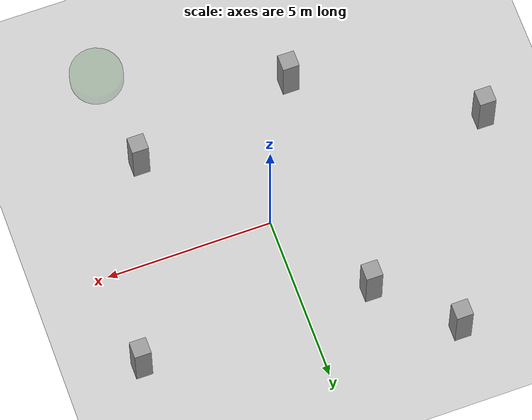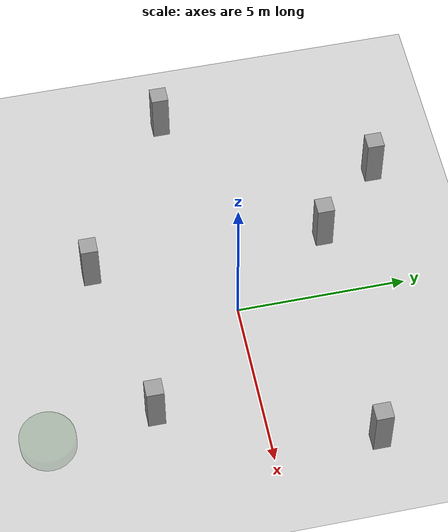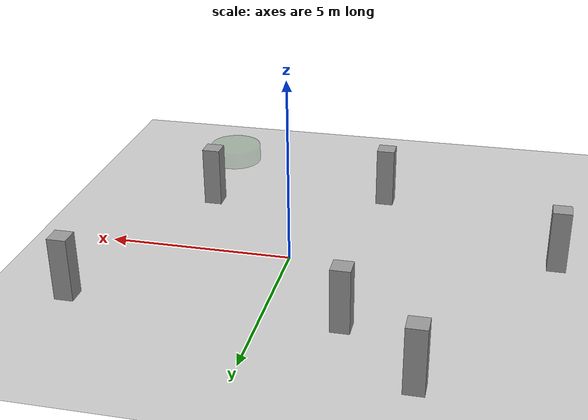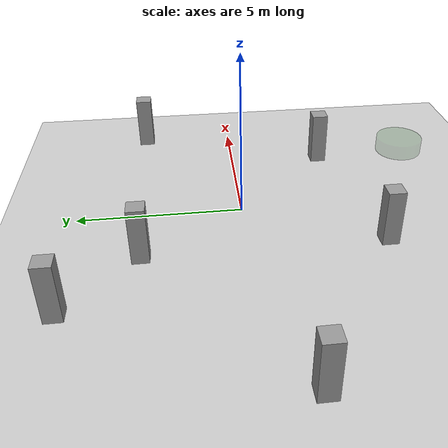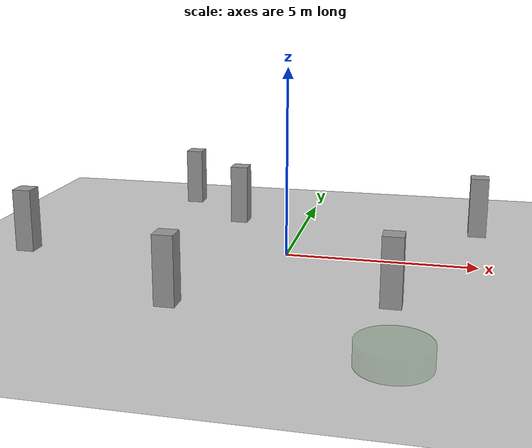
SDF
<sdf version="1.6">
 <world name="default">
  <light name="sun" type="directional">
   <pose>0 0 10 0 -0 0</pose>
   <diffuse>0.8 0.8 0.8 1</diffuse>
   <specular>0.1 0.1 0.1 1</specular>
   <attenuation>
    <range>1000</range>
    <constant>0.9</constant>
    <linear>0.01</linear>
    <quadratic>0.001</quadratic>
   </attenuation>
   <direction>-0.5 0.5 -1</direction>
  </light>
  <model name="ground_plane">
   <static>1</static>
   <link name="link">
    <collision name="collision">
     <geometry><plane><normal>0 0 1</normal><size>100 100</size></plane></geometry>
     <surface><friction><ode><mu>100</mu><mu2>50</mu2></ode></friction></surface>
    </collision>
    <visual name="visual">
     <cast_shadows>0</cast_shadows>
     <geometry><plane><normal>0 0 1</normal><size>100 100</size></plane></geometry>
     <material>
      <script><uri>file://media/materials/scripts/gazebo.material</uri><name>Gazebo/Grey</name></script>
     </material>
    </visual>
   </link>
  </model>
  <gravity>0 0 -9.8</gravity>
  <magnetic_field>6e-06 2.3e-05 -4.2e-05</magnetic_field>
  <atmosphere type="adiabatic"/>
  <physics name="default_physics" default="0" type="ode">
   <max_step_size>0.001</max_step_size>
   <real_time_factor>1</real_time_factor>
   <real_time_update_rate>1000</real_time_update_rate>
  </physics>
  <scene><ambient>0.4 0.4 0.4 1</ambient><background>0.7 0.7 0.7 1</background><shadows>1</shadows></scene>
  <spherical_coordinates>
   <surface_model>EARTH_WGS84</surface_model>
   <latitude_deg>0</latitude_deg>
   <longitude_deg>0</longitude_deg>
   <elevation>0</elevation>
   <heading_deg>0</heading_deg>
  </spherical_coordinates>
  <model name="obs_multi_0">
   <link name="link_3">
    <pose>0 0 0.85 0 -0 0</pose>
    <inertial>
     <mass>1</mass>
     <inertia>
      <ixx>0.166667</ixx>
      <ixy>0</ixy>
      <ixz>0</ixz>
      <iyy>0.166667</iyy>
      <iyz>0</iyz>
      <izz>0.166667</izz>
     </inertia>
    </inertial>
    <visual name="visual">
     <geometry><box><size>0.5 0.5 1.7</size></box></geometry>
     <material>
      <lighting>1</lighting>
      <script><uri>file://media/materials/scripts/gazebo.material</uri><name>Gazebo/Grey</name></script>
      <ambient>0.3 0.3 0.3 1</ambient>
      <diffuse>0.7 0.7 0.7 1</diffuse>
      <specular>0.01 0.01 0.01 1</specular>
      <emissive>0 0 0 1</emissive>
      <shader type="vertex"><normal_map>__default__</normal_map></shader>
     </material>
    </visual>
    <collision name="collision">
     <geometry><box><size>0.5 0.5 1.7</size></box></geometry>
     <surface>
      <friction>
       <ode><mu>1</mu><mu2>1</mu2><fdir1>0 0 0</fdir1><slip1>0</slip1><slip2>0</slip2></ode>
       <torsional>
        <coefficient>1</coefficient>
        <patch_radius>0</patch_radius>
        <surface_radius>0</surface_radius>
        <use_patch_radius>1</use_patch_radius>
        <ode><slip>0</slip></ode>
       </torsional>
      </friction>
      <bounce><restitution_coefficient>0</restitution_coefficient><threshold>1e+06</threshold></bounce>
      <contact>
       <collide_without_contact>0</collide_without_contact>
       <collide_without_contact_bitmask>1</collide_without_contact_bitmask>
       <collide_bitmask>1</collide_bitmask>
       <ode>
        <soft_cfm>0</soft_cfm>
        <soft_erp>0.2</soft_erp>
        <kp>1e+13</kp>
        <kd>1</kd>
        <max_vel>0.01</max_vel>
        <min_depth>0</min_depth>
       </ode>
       <bullet>
        <split_impulse>1</split_impulse>
        <split_impulse_penetration_threshold>-0.01</split_impulse_penetration_threshold>
        <soft_cfm>0</soft_cfm>
        <soft_erp>0.2</soft_erp>
        <kp>1e+13</kp>
        <kd>1</kd>
       </bullet>
      </contact>
     </surface>
    </collision>
   </link>
   <static>1</static>
   <pose>5 3 0 0 -0 0</pose>
  </model>
  <model name="obs_multi_1">
   <link name="link_3">
    <pose>0 0 0.85 0 -0 0</pose>
    <inertial>
     <mass>1</mass>
     <inertia>
      <ixx>0.166667</ixx>
      <ixy>0</ixy>
      <ixz>0</ixz>
      <iyy>0.166667</iyy>
      <iyz>0</iyz>
      <izz>0.166667</izz>
     </inertia>
    </inertial>
    <visual name="visual">
     <geometry><box><size>0.5 0.5 1.7</size></box></geometry>
     <material>
      <lighting>1</lighting>
      <script><uri>file://media/materials/scripts/gazebo.material</uri><name>Gazebo/Grey</name></script>
      <ambient>0.3 0.3 0.3 1</ambient>
      <diffuse>0.7 0.7 0.7 1</diffuse>
      <specular>0.01 0.01 0.01 1</specular>
      <emissive>0 0 0 1</emissive>
      <shader type="vertex"><normal_map>__default__</normal_map></shader>
     </material>
    </visual>
    <collision name="collision">
     <geometry><box><size>0.5 0.5 1.7</size></box></geometry>
     <surface>
      <friction>
       <ode><mu>1</mu><mu2>1</mu2><fdir1>0 0 0</fdir1><slip1>0</slip1><slip2>0</slip2></ode>
       <torsional>
        <coefficient>1</coefficient>
        <patch_radius>0</patch_radius>
        <surface_radius>0</surface_radius>
        <use_patch_radius>1</use_patch_radius>
        <ode><slip>0</slip></ode>
       </torsional>
      </friction>
      <bounce><restitution_coefficient>0</restitution_coefficient><threshold>1e+06</threshold></bounce>
      <contact>
       <collide_without_contact>0</collide_without_contact>
       <collide_without_contact_bitmask>1</collide_without_contact_bitmask>
       <collide_bitmask>1</collide_bitmask>
       <ode>
        <soft_cfm>0</soft_cfm>
        <soft_erp>0.2</soft_erp>
        <kp>1e+13</kp>
        <kd>1</kd>
        <max_vel>0.01</max_vel>
        <min_depth>0</min_depth>
       </ode>
       <bullet>
        <split_impulse>1</split_impulse>
        <split_impulse_penetration_threshold>-0.01</split_impulse_penetration_threshold>
        <soft_cfm>0</soft_cfm>
        <soft_erp>0.2</soft_erp>
        <kp>1e+13</kp>
        <kd>1</kd>
       </bullet>
      </contact>
     </surface>
    </collision>
   </link>
   <static>1</static>
   <pose>-2 -4 0 0 -0 0</pose>
  </model>
  <model name="obs_multi_2">
   <link name="link_3">
    <pose>0 0 0.85 0 -0 0</pose>
    <inertial>
     <mass>1</mass>
     <inertia>
      <ixx>0.166667</ixx>
      <ixy>0</ixy>
      <ixz>0</ixz>
      <iyy>0.166667</iyy>
      <iyz>0</iyz>
      <izz>0.166667</izz>
     </inertia>
    </inertial>
    <visual name="visual">
     <geometry><box><size>0.5 0.5 1.7</size></box></geometry>
     <material>
      <lighting>1</lighting>
      <script><uri>file://media/materials/scripts/gazebo.material</uri><name>Gazebo/Grey</name></script>
      <ambient>0.3 0.3 0.3 1</ambient>
      <diffuse>0.7 0.7 0.7 1</diffuse>
      <specular>0.01 0.01 0.01 1</specular>
      <emissive>0 0 0 1</emissive>
      <shader type="vertex"><normal_map>__default__</normal_map></shader>
     </material>
    </visual>
    <collision name="collision">
     <geometry><box><size>0.5 0.5 1.7</size></box></geometry>
     <surface>
      <friction>
       <ode><mu>1</mu><mu2>1</mu2><fdir1>0 0 0</fdir1><slip1>0</slip1><slip2>0</slip2></ode>
       <torsional>
        <coefficient>1</coefficient>
        <patch_radius>0</patch_radius>
        <surface_radius>0</surface_radius>
        <use_patch_radius>1</use_patch_radius>
        <ode><slip>0</slip></ode>
       </torsional>
      </friction>
      <bounce><restitution_coefficient>0</restitution_coefficient><threshold>1e+06</threshold></bounce>
      <contact>
       <collide_without_contact>0</collide_without_contact>
       <collide_without_contact_bitmask>1</collide_without_contact_bitmask>
       <collide_bitmask>1</collide_bitmask>
       <ode>
        <soft_cfm>0</soft_cfm>
        <soft_erp>0.2</soft_erp>
        <kp>1e+13</kp>
        <kd>1</kd>
        <max_vel>0.01</max_vel>
        <min_depth>0</min_depth>
       </ode>
       <bullet>
        <split_impulse>1</split_impulse>
        <split_impulse_penetration_threshold>-0.01</split_impulse_penetration_threshold>
        <soft_cfm>0</soft_cfm>
        <soft_erp>0.2</soft_erp>
        <kp>1e+13</kp>
        <kd>1</kd>
       </bullet>
      </contact>
     </surface>
    </collision>
   </link>
   <static>1</static>
   <pose>-4 5 0 0 -0 0</pose>
  </model>
  <model name="obs_multi_3">
   <link name="link_3">
    <pose>0 0 0.85 0 -0 0</pose>
    <inertial>
     <mass>1</mass>
     <inertia>
      <ixx>0.166667</ixx>
      <ixy>0</ixy>
      <ixz>0</ixz>
      <iyy>0.166667</iyy>
      <iyz>0</iyz>
      <izz>0.166667</izz>
     </inertia>
    </inertial>
    <visual name="visual">
     <geometry><box><size>0.5 0.5 1.7</size></box></geometry>
     <material>
      <lighting>1</lighting>
      <script><uri>file://media/materials/scripts/gazebo.material</uri><name>Gazebo/Grey</name></script>
      <ambient>0.3 0.3 0.3 1</ambient>
      <diffuse>0.7 0.7 0.7 1</diffuse>
      <specular>0.01 0.01 0.01 1</specular>
      <emissive>0 0 0 1</emissive>
      <shader type="vertex"><normal_map>__default__</normal_map></shader>
     </material>
    </visual>
    <collision name="collision">
     <geometry><box><size>0.5 0.5 1.7</size></box></geometry>
     <surface>
      <friction>
       <ode><mu>1</mu><mu2>1</mu2><fdir1>0 0 0</fdir1><slip1>0</slip1><slip2>0</slip2></ode>
       <torsional>
        <coefficient>1</coefficient>
        <patch_radius>0</patch_radius>
        <surface_radius>0</surface_radius>
        <use_patch_radius>1</use_patch_radius>
        <ode><slip>0</slip></ode>
       </torsional>
      </friction>
      <bounce><restitution_coefficient>0</restitution_coefficient><threshold>1e+06</threshold></bounce>
      <contact>
       <collide_without_contact>0</collide_without_contact>
       <collide_without_contact_bitmask>1</collide_without_contact_bitmask>
       <collide_bitmask>1</collide_bitmask>
       <ode>
        <soft_cfm>0</soft_cfm>
        <soft_erp>0.2</soft_erp>
        <kp>1e+13</kp>
        <kd>1</kd>
        <max_vel>0.01</max_vel>
        <min_depth>0</min_depth>
       </ode>
       <bullet>
        <split_impulse>1</split_impulse>
        <split_impulse_penetration_threshold>-0.01</split_impulse_penetration_threshold>
        <soft_cfm>0</soft_cfm>
        <soft_erp>0.2</soft_erp>
        <kp>1e+13</kp>
        <kd>1</kd>
       </bullet>
      </contact>
     </surface>
    </collision>
   </link>
   <static>1</static>
   <pose>3 -3 0 0 -0 0</pose>
  </model>
  <model name="obs_multi_4">
   <link name="link_3">
    <pose>0 0 0.85 0 -0 0</pose>
    <inertial>
     <mass>1</mass>
     <inertia>
      <ixx>0.166667</ixx>
      <ixy>0</ixy>
      <ixz>0</ixz>
      <iyy>0.166667</iyy>
      <iyz>0</iyz>
      <izz>0.166667</izz>
     </inertia>
    </inertial>
    <visual name="visual">
     <geometry><box><size>0.5 0.5 1.7</size></box></geometry>
     <material>
      <lighting>1</lighting>
      <script><uri>file://media/materials/scripts/gazebo.material</uri><name>Gazebo/Grey</name></script>
      <ambient>0.3 0.3 0.3 1</ambient>
      <diffuse>0.7 0.7 0.7 1</diffuse>
      <specular>0.01 0.01 0.01 1</specular>
      <emissive>0 0 0 1</emissive>
      <shader type="vertex"><normal_map>__default__</normal_map></shader>
     </material>
    </visual>
    <collision name="collision">
     <geometry><box><size>0.5 0.5 1.7</size></box></geometry>
     <surface>
      <friction>
       <ode><mu>1</mu><mu2>1</mu2><fdir1>0 0 0</fdir1><slip1>0</slip1><slip2>0</slip2></ode>
       <torsional>
        <coefficient>1</coefficient>
        <patch_radius>0</patch_radius>
        <surface_radius>0</surface_radius>
        <use_patch_radius>1</use_patch_radius>
        <ode><slip>0</slip></ode>
       </torsional>
      </friction>
      <bounce><restitution_coefficient>0</restitution_coefficient><threshold>1e+06</threshold></bounce>
      <contact>
       <collide_without_contact>0</collide_without_contact>
       <collide_without_contact_bitmask>1</collide_without_contact_bitmask>
       <collide_bitmask>1</collide_bitmask>
       <ode>
        <soft_cfm>0</soft_cfm>
        <soft_erp>0.2</soft_erp>
        <kp>1e+13</kp>
        <kd>1</kd>
        <max_vel>0.01</max_vel>
        <min_depth>0</min_depth>
       </ode>
       <bullet>
        <split_impulse>1</split_impulse>
        <split_impulse_penetration_threshold>-0.01</split_impulse_penetration_threshold>
        <soft_cfm>0</soft_cfm>
        <soft_erp>0.2</soft_erp>
        <kp>1e+13</kp>
        <kd>1</kd>
       </bullet>
      </contact>
     </surface>
    </collision>
   </link>
   <static>1</static>
   <pose>-7 -1 0 0 -0 0</pose>
  </model>
  <model name="obs_multi">
   <link name="link_3">
    <pose>0 0 0.85 0 -0 0</pose>
    <inertial>
     <mass>1</mass>
     <inertia>
      <ixx>0.166667</ixx>
      <ixy>0</ixy>
      <ixz>0</ixz>
      <iyy>0.166667</iyy>
      <iyz>0</iyz>
      <izz>0.166667</izz>
     </inertia>
    </inertial>
    <visual name="visual">
     <geometry><box><size>0.5 0.5 1.7</size></box></geometry>
     <material>
      <lighting>1</lighting>
      <script><uri>file://media/materials/scripts/gazebo.material</uri><name>Gazebo/Grey</name></script>
      <ambient>0.3 0.3 0.3 1</ambient>
      <diffuse>0.7 0.7 0.7 1</diffuse>
      <specular>0.01 0.01 0.01 1</specular>
      <emissive>0 0 0 1</emissive>
      <shader type="vertex"><normal_map>__default__</normal_map></shader>
     </material>
    </visual>
    <collision name="collision">
     <geometry><box><size>0.5 0.5 1.7</size></box></geometry>
     <surface>
      <friction>
       <ode><mu>1</mu><mu2>1</mu2><fdir1>0 0 0</fdir1><slip1>0</slip1><slip2>0</slip2></ode>
       <torsional>
        <coefficient>1</coefficient>
        <patch_radius>0</patch_radius>
        <surface_radius>0</surface_radius>
        <use_patch_radius>1</use_patch_radius>
        <ode><slip>0</slip></ode>
       </torsional>
      </friction>
      <bounce><restitution_coefficient>0</restitution_coefficient><threshold>1e+06</threshold></bounce>
      <contact>
       <collide_without_contact>0</collide_without_contact>
       <collide_without_contact_bitmask>1</collide_without_contact_bitmask>
       <collide_bitmask>1</collide_bitmask>
       <ode>
        <soft_cfm>0</soft_cfm>
        <soft_erp>0.2</soft_erp>
        <kp>1e+13</kp>
        <kd>1</kd>
        <max_vel>0.01</max_vel>
        <min_depth>0</min_depth>
       </ode>
       <bullet>
        <split_impulse>1</split_impulse>
        <split_impulse_penetration_threshold>-0.01</split_impulse_penetration_threshold>
        <soft_cfm>0</soft_cfm>
        <soft_erp>0.2</soft_erp>
        <kp>1e+13</kp>
        <kd>1</kd>
       </bullet>
      </contact>
     </surface>
    </collision>
   </link>
   <static>1</static>
   <pose>-2 3 0 0 -0 0</pose>
  </model>
  <model name="Goal_0">
   <link name="link">
    <inertial>
     <mass>1</mass>
     <inertia><ixx>0.145833</ixx><ixy>0</ixy><ixz>0</ixz><iyy>0.145833</iyy><iyz>0</iyz><izz>0.125</izz></inertia>
    </inertial>
    <visual name="visual">
     <geometry><cylinder><radius>0.8</radius><length>1</length></cylinder></geometry>
     <material>
      <script><name>Gazebo/Grey</name><uri>file://media/materials/scripts/gazebo.material</uri></script>
      <ambient>0 0.3 0 0.1</ambient>
      <diffuse>0.7 0.7 0.7 1</diffuse>
      <specular>0.01 0.01 0.01 1</specular>
      <emissive>0 0 0 1</emissive>
      <shader type="vertex"><normal_map>__default__</normal_map></shader>
     </material>
    </visual>
    <collision name="collision">
     <geometry><cylinder><radius>0.001</radius><length>0.001</length></cylinder></geometry>
     <surface>
      <friction>
       <ode><mu>1</mu><mu2>1</mu2><fdir1>0 0 0</fdir1><slip1>0</slip1><slip2>0</slip2></ode>
       <torsional>
        <coefficient>1</coefficient>
        <patch_radius>0</patch_radius>
        <surface_radius>0</surface_radius>
        <use_patch_radius>1</use_patch_radius>
        <ode><slip>0</slip></ode>
       </torsional>
      </friction>
      <bounce><restitution_coefficient>0</restitution_coefficient><threshold>1e+06</threshold></bounce>
      <contact>
       <collide_without_contact>0</collide_without_contact>
       <collide_without_contact_bitmask>1</collide_without_contact_bitmask>
       <collide_bitmask>1</collide_bitmask>
       <ode>
        <soft_cfm>0</soft_cfm>
        <soft_erp>0.2</soft_erp>
        <kp>1e+13</kp>
        <kd>1</kd>
        <max_vel>0.01</max_vel>
        <min_depth>0</min_depth>
       </ode>
       <bullet>
        <split_impulse>1</split_impulse>
        <split_impulse_penetration_threshold>-0.01</split_impulse_penetration_threshold>
        <soft_cfm>0</soft_cfm>
        <soft_erp>0.2</soft_erp>
        <kp>1e+13</kp>
        <kd>1</kd>
       </bullet>
      </contact>
     </surface>
    </collision>
   </link>
   <static>0</static>
   <pose>3.266 -6.08913 0.000491 -3.7e-05 6.6e-05 0</pose>
  </model>
 </world>
</sdf>
